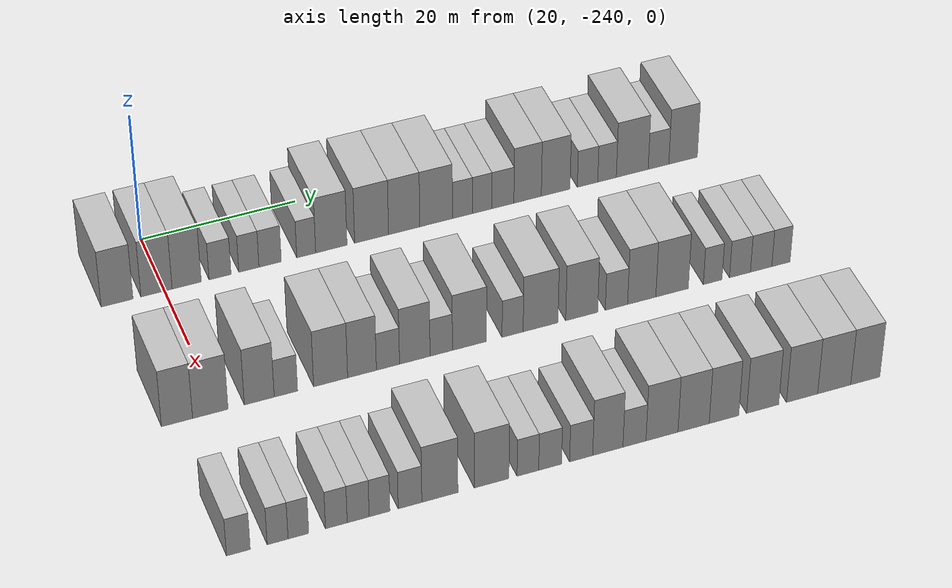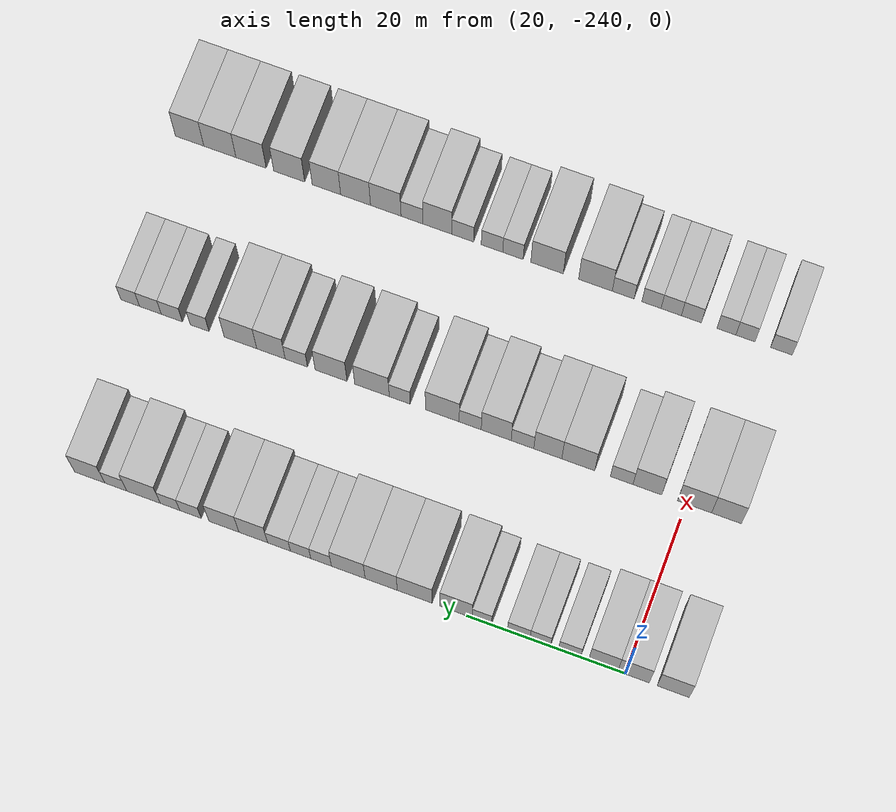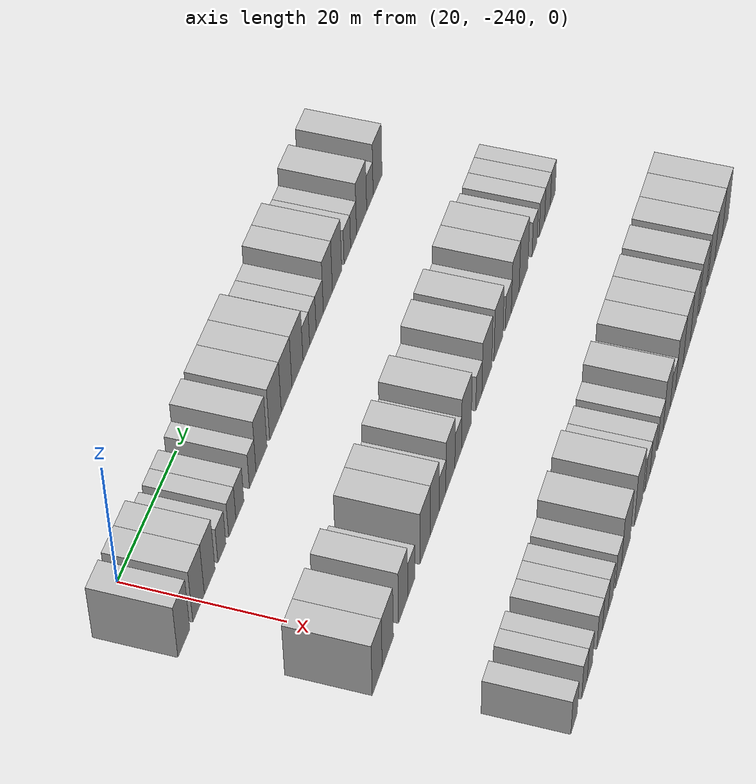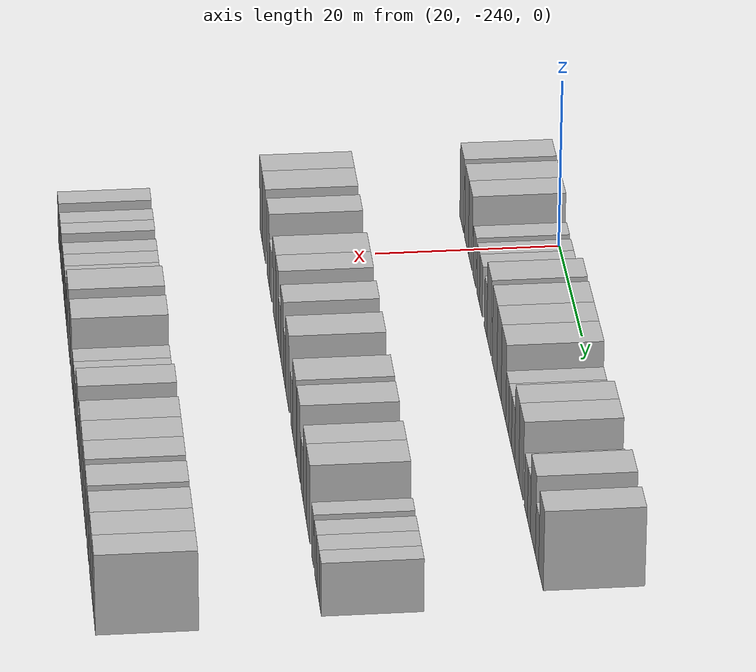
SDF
<sdf version="1.6">
 <world name="default">
  <model name="building_1">
   <static>1</static>
   <pose>25.0000 -245.9933 0 0.000000 0.000000 0.000000</pose>
   <link name="link">
    <pose>0 0 4.50 0 0 0</pose>
    <collision name="collision"><geometry><box><size>10.0000 4.0133 9.0000</size></box></geometry></collision>
    <visual name="visual">
     <cast_shadows>0</cast_shadows>
     <geometry><box><size>10.0000 4.0133 9.0000</size></box></geometry>
     <material>
      <script>
       <uri>model://HANNAS_wall/materials/scripts</uri>
       <uri>model://HANNAS_wall/materials/textures</uri>
       <name>vrc/HANNAS_wall</name>
      </script>
     </material>
    </visual>
   </link>
  </model>
  <model name="building_2">
   <static>1</static>
   <pose>25.0000 -241.0090 0 0.000000 0.000000 0.000000</pose>
   <link name="link">
    <pose>0 0 4.50 0 0 0</pose>
    <collision name="collision"><geometry><box><size>10.0000 3.9553 9.0000</size></box></geometry></collision>
    <visual name="visual">
     <cast_shadows>0</cast_shadows>
     <geometry><box><size>10.0000 3.9553 9.0000</size></box></geometry>
     <material>
      <script>
       <uri>model://HANNAS_wall/materials/scripts</uri>
       <uri>model://HANNAS_wall/materials/textures</uri>
       <name>vrc/HANNAS_wall</name>
      </script>
     </material>
    </visual>
   </link>
  </model>
  <model name="building_3">
   <static>1</static>
   <pose>25.0000 -237.1821 0 0.000000 0.000000 0.000000</pose>
   <link name="link">
    <pose>0 0 4.50 0 0 0</pose>
    <collision name="collision"><geometry><box><size>10.0000 3.6985 9.0000</size></box></geometry></collision>
    <visual name="visual">
     <cast_shadows>0</cast_shadows>
     <geometry><box><size>10.0000 3.6985 9.0000</size></box></geometry>
     <material>
      <script>
       <uri>model://HANNAS_wall/materials/scripts</uri>
       <uri>model://HANNAS_wall/materials/textures</uri>
       <name>vrc/HANNAS_wall</name>
      </script>
     </material>
    </visual>
   </link>
  </model>
  <model name="building_4">
   <static>1</static>
   <pose>25.0000 -232.9304 0 0.000000 0.000000 0.000000</pose>
   <link name="link">
    <pose>0 0 3.00 0 0 0</pose>
    <collision name="collision"><geometry><box><size>10.0000 2.8050 6.0000</size></box></geometry></collision>
    <visual name="visual">
     <cast_shadows>0</cast_shadows>
     <geometry><box><size>10.0000 2.8050 6.0000</size></box></geometry>
     <material>
      <script>
       <uri>model://HANNAS_wall/materials/scripts</uri>
       <uri>model://HANNAS_wall/materials/textures</uri>
       <name>vrc/HANNAS_wall</name>
      </script>
     </material>
    </visual>
   </link>
  </model>
  <model name="building_5">
   <static>1</static>
   <pose>25.0000 -229.2322 0 0.000000 0.000000 0.000000</pose>
   <link name="link">
    <pose>0 0 3.00 0 0 0</pose>
    <collision name="collision"><geometry><box><size>10.0000 2.5915 6.0000</size></box></geometry></collision>
    <visual name="visual">
     <cast_shadows>0</cast_shadows>
     <geometry><box><size>10.0000 2.5915 6.0000</size></box></geometry>
     <material>
      <script>
       <uri>model://HANNAS_wall/materials/scripts</uri>
       <uri>model://HANNAS_wall/materials/textures</uri>
       <name>vrc/HANNAS_wall</name>
      </script>
     </material>
    </visual>
   </link>
  </model>
  <model name="building_6">
   <static>1</static>
   <pose>25.0000 -226.4989 0 0.000000 0.000000 0.000000</pose>
   <link name="link">
    <pose>0 0 3.00 0 0 0</pose>
    <collision name="collision"><geometry><box><size>10.0000 2.8751 6.0000</size></box></geometry></collision>
    <visual name="visual">
     <cast_shadows>0</cast_shadows>
     <geometry><box><size>10.0000 2.8751 6.0000</size></box></geometry>
     <material>
      <script>
       <uri>model://HANNAS_wall/materials/scripts</uri>
       <uri>model://HANNAS_wall/materials/textures</uri>
       <name>vrc/HANNAS_wall</name>
      </script>
     </material>
    </visual>
   </link>
  </model>
  <model name="building_7">
   <static>1</static>
   <pose>25.0000 -221.8341 0 0.000000 0.000000 0.000000</pose>
   <link name="link">
    <pose>0 0 3.00 0 0 0</pose>
    <collision name="collision"><geometry><box><size>10.0000 2.4544 6.0000</size></box></geometry></collision>
    <visual name="visual">
     <cast_shadows>0</cast_shadows>
     <geometry><box><size>10.0000 2.4544 6.0000</size></box></geometry>
     <material>
      <script>
       <uri>model://HANNAS_wall/materials/scripts</uri>
       <uri>model://HANNAS_wall/materials/textures</uri>
       <name>vrc/HANNAS_wall</name>
      </script>
     </material>
    </visual>
   </link>
  </model>
  <model name="building_8">
   <static>1</static>
   <pose>25.0000 -218.5676 0 0.000000 0.000000 0.000000</pose>
   <link name="link">
    <pose>0 0 4.50 0 0 0</pose>
    <collision name="collision"><geometry><box><size>10.0000 4.0787 9.0000</size></box></geometry></collision>
    <visual name="visual">
     <cast_shadows>0</cast_shadows>
     <geometry><box><size>10.0000 4.0787 9.0000</size></box></geometry>
     <material>
      <script>
       <uri>model://HANNAS_wall/materials/scripts</uri>
       <uri>model://HANNAS_wall/materials/textures</uri>
       <name>vrc/HANNAS_wall</name>
      </script>
     </material>
    </visual>
   </link>
  </model>
  <model name="building_9">
   <static>1</static>
   <pose>25.0000 -213.3047 0 0.000000 0.000000 0.000000</pose>
   <link name="link">
    <pose>0 0 4.50 0 0 0</pose>
    <collision name="collision"><geometry><box><size>10.0000 4.4470 9.0000</size></box></geometry></collision>
    <visual name="visual">
     <cast_shadows>0</cast_shadows>
     <geometry><box><size>10.0000 4.4470 9.0000</size></box></geometry>
     <material>
      <script>
       <uri>model://HANNAS_wall/materials/scripts</uri>
       <uri>model://HANNAS_wall/materials/textures</uri>
       <name>vrc/HANNAS_wall</name>
      </script>
     </material>
    </visual>
   </link>
  </model>
  <model name="building_10">
   <static>1</static>
   <pose>25.0000 -209.0256 0 0.000000 0.000000 0.000000</pose>
   <link name="link">
    <pose>0 0 4.50 0 0 0</pose>
    <collision name="collision"><geometry><box><size>10.0000 4.1112 9.0000</size></box></geometry></collision>
    <visual name="visual">
     <cast_shadows>0</cast_shadows>
     <geometry><box><size>10.0000 4.1112 9.0000</size></box></geometry>
     <material>
      <script>
       <uri>model://HANNAS_wall/materials/scripts</uri>
       <uri>model://HANNAS_wall/materials/textures</uri>
       <name>vrc/HANNAS_wall</name>
      </script>
     </material>
    </visual>
   </link>
  </model>
  <model name="building_11">
   <static>1</static>
   <pose>25.0000 -204.8064 0 0.000000 0.000000 0.000000</pose>
   <link name="link">
    <pose>0 0 4.50 0 0 0</pose>
    <collision name="collision"><geometry><box><size>10.0000 4.3273 9.0000</size></box></geometry></collision>
    <visual name="visual">
     <cast_shadows>0</cast_shadows>
     <geometry><box><size>10.0000 4.3273 9.0000</size></box></geometry>
     <material>
      <script>
       <uri>model://HANNAS_wall/materials/scripts</uri>
       <uri>model://HANNAS_wall/materials/textures</uri>
       <name>vrc/HANNAS_wall</name>
      </script>
     </material>
    </visual>
   </link>
  </model>
  <model name="building_12">
   <static>1</static>
   <pose>25.0000 -201.3231 0 0.000000 0.000000 0.000000</pose>
   <link name="link">
    <pose>0 0 3.00 0 0 0</pose>
    <collision name="collision"><geometry><box><size>10.0000 2.6392 6.0000</size></box></geometry></collision>
    <visual name="visual">
     <cast_shadows>0</cast_shadows>
     <geometry><box><size>10.0000 2.6392 6.0000</size></box></geometry>
     <material>
      <script>
       <uri>model://HANNAS_wall/materials/scripts</uri>
       <uri>model://HANNAS_wall/materials/textures</uri>
       <name>vrc/HANNAS_wall</name>
      </script>
     </material>
    </visual>
   </link>
  </model>
  <model name="building_13">
   <static>1</static>
   <pose>25.0000 -198.6976 0 0.000000 0.000000 0.000000</pose>
   <link name="link">
    <pose>0 0 3.00 0 0 0</pose>
    <collision name="collision"><geometry><box><size>10.0000 2.6119 6.0000</size></box></geometry></collision>
    <visual name="visual">
     <cast_shadows>0</cast_shadows>
     <geometry><box><size>10.0000 2.6119 6.0000</size></box></geometry>
     <material>
      <script>
       <uri>model://HANNAS_wall/materials/scripts</uri>
       <uri>model://HANNAS_wall/materials/textures</uri>
       <name>vrc/HANNAS_wall</name>
      </script>
     </material>
    </visual>
   </link>
  </model>
  <model name="building_14">
   <static>1</static>
   <pose>25.0000 -195.9175 0 0.000000 0.000000 0.000000</pose>
   <link name="link">
    <pose>0 0 3.00 0 0 0</pose>
    <collision name="collision"><geometry><box><size>10.0000 2.9483 6.0000</size></box></geometry></collision>
    <visual name="visual">
     <cast_shadows>0</cast_shadows>
     <geometry><box><size>10.0000 2.9483 6.0000</size></box></geometry>
     <material>
      <script>
       <uri>model://HANNAS_wall/materials/scripts</uri>
       <uri>model://HANNAS_wall/materials/textures</uri>
       <name>vrc/HANNAS_wall</name>
      </script>
     </material>
    </visual>
   </link>
  </model>
  <model name="building_15">
   <static>1</static>
   <pose>25.0000 -192.6000 0 0.000000 0.000000 0.000000</pose>
   <link name="link">
    <pose>0 0 4.50 0 0 0</pose>
    <collision name="collision"><geometry><box><size>10.0000 3.6866 9.0000</size></box></geometry></collision>
    <visual name="visual">
     <cast_shadows>0</cast_shadows>
     <geometry><box><size>10.0000 3.6866 9.0000</size></box></geometry>
     <material>
      <script>
       <uri>model://HANNAS_wall/materials/scripts</uri>
       <uri>model://HANNAS_wall/materials/textures</uri>
       <name>vrc/HANNAS_wall</name>
      </script>
     </material>
    </visual>
   </link>
  </model>
  <model name="building_16">
   <static>1</static>
   <pose>25.0000 -188.8242 0 0.000000 0.000000 0.000000</pose>
   <link name="link">
    <pose>0 0 4.50 0 0 0</pose>
    <collision name="collision"><geometry><box><size>10.0000 3.8650 9.0000</size></box></geometry></collision>
    <visual name="visual">
     <cast_shadows>0</cast_shadows>
     <geometry><box><size>10.0000 3.8650 9.0000</size></box></geometry>
     <material>
      <script>
       <uri>model://HANNAS_wall/materials/scripts</uri>
       <uri>model://HANNAS_wall/materials/textures</uri>
       <name>vrc/HANNAS_wall</name>
      </script>
     </material>
    </visual>
   </link>
  </model>
  <model name="building_17">
   <static>1</static>
   <pose>25.0000 -184.5043 0 0.000000 0.000000 0.000000</pose>
   <link name="link">
    <pose>0 0 3.00 0 0 0</pose>
    <collision name="collision"><geometry><box><size>10.0000 2.7749 6.0000</size></box></geometry></collision>
    <visual name="visual">
     <cast_shadows>0</cast_shadows>
     <geometry><box><size>10.0000 2.7749 6.0000</size></box></geometry>
     <material>
      <script>
       <uri>model://HANNAS_wall/materials/scripts</uri>
       <uri>model://HANNAS_wall/materials/textures</uri>
       <name>vrc/HANNAS_wall</name>
      </script>
     </material>
    </visual>
   </link>
  </model>
  <model name="building_18">
   <static>1</static>
   <pose>25.0000 -181.8539 0 0.000000 0.000000 0.000000</pose>
   <link name="link">
    <pose>0 0 3.00 0 0 0</pose>
    <collision name="collision"><geometry><box><size>10.0000 2.5259 6.0000</size></box></geometry></collision>
    <visual name="visual">
     <cast_shadows>0</cast_shadows>
     <geometry><box><size>10.0000 2.5259 6.0000</size></box></geometry>
     <material>
      <script>
       <uri>model://HANNAS_wall/materials/scripts</uri>
       <uri>model://HANNAS_wall/materials/textures</uri>
       <name>vrc/HANNAS_wall</name>
      </script>
     </material>
    </visual>
   </link>
  </model>
  <model name="building_19">
   <static>1</static>
   <pose>25.0000 -178.4099 0 0.000000 0.000000 0.000000</pose>
   <link name="link">
    <pose>0 0 4.50 0 0 0</pose>
    <collision name="collision"><geometry><box><size>10.0000 4.3621 9.0000</size></box></geometry></collision>
    <visual name="visual">
     <cast_shadows>0</cast_shadows>
     <geometry><box><size>10.0000 4.3621 9.0000</size></box></geometry>
     <material>
      <script>
       <uri>model://HANNAS_wall/materials/scripts</uri>
       <uri>model://HANNAS_wall/materials/textures</uri>
       <name>vrc/HANNAS_wall</name>
      </script>
     </material>
    </visual>
   </link>
  </model>
  <model name="building_20">
   <static>1</static>
   <pose>25.0000 -174.8103 0 0.000000 0.000000 0.000000</pose>
   <link name="link">
    <pose>0 0 3.00 0 0 0</pose>
    <collision name="collision"><geometry><box><size>10.0000 2.8371 6.0000</size></box></geometry></collision>
    <visual name="visual">
     <cast_shadows>0</cast_shadows>
     <geometry><box><size>10.0000 2.8371 6.0000</size></box></geometry>
     <material>
      <script>
       <uri>model://HANNAS_wall/materials/scripts</uri>
       <uri>model://HANNAS_wall/materials/textures</uri>
       <name>vrc/HANNAS_wall</name>
      </script>
     </material>
    </visual>
   </link>
  </model>
  <model name="building_21">
   <static>1</static>
   <pose>25.0000 -171.4279 0 0.000000 0.000000 0.000000</pose>
   <link name="link">
    <pose>0 0 4.50 0 0 0</pose>
    <collision name="collision"><geometry><box><size>10.0000 3.9276 9.0000</size></box></geometry></collision>
    <visual name="visual">
     <cast_shadows>0</cast_shadows>
     <geometry><box><size>10.0000 3.9276 9.0000</size></box></geometry>
     <material>
      <script>
       <uri>model://HANNAS_wall/materials/scripts</uri>
       <uri>model://HANNAS_wall/materials/textures</uri>
       <name>vrc/HANNAS_wall</name>
      </script>
     </material>
    </visual>
   </link>
  </model>
  <model name="building_135">
   <static>1</static>
   <pose>47.0000 -245.0998 0 0.000000 0.000000 0.000000</pose>
   <link name="link">
    <pose>0 0 4.50 0 0 0</pose>
    <collision name="collision"><geometry><box><size>10.0000 3.8003 9.0000</size></box></geometry></collision>
    <visual name="visual">
     <cast_shadows>0</cast_shadows>
     <geometry><box><size>10.0000 3.8003 9.0000</size></box></geometry>
     <material>
      <script>
       <uri>model://HANNAS_wall/materials/scripts</uri>
       <uri>model://HANNAS_wall/materials/textures</uri>
       <name>vrc/HANNAS_wall</name>
      </script>
     </material>
    </visual>
   </link>
  </model>
  <model name="building_136">
   <static>1</static>
   <pose>47.0000 -241.0309 0 0.000000 0.000000 0.000000</pose>
   <link name="link">
    <pose>0 0 4.50 0 0 0</pose>
    <collision name="collision"><geometry><box><size>10.0000 4.3375 9.0000</size></box></geometry></collision>
    <visual name="visual">
     <cast_shadows>0</cast_shadows>
     <geometry><box><size>10.0000 4.3375 9.0000</size></box></geometry>
     <material>
      <script>
       <uri>model://HANNAS_wall/materials/scripts</uri>
       <uri>model://HANNAS_wall/materials/textures</uri>
       <name>vrc/HANNAS_wall</name>
      </script>
     </material>
    </visual>
   </link>
  </model>
  <model name="building_137">
   <static>1</static>
   <pose>47.0000 -235.0188 0 0.000000 0.000000 0.000000</pose>
   <link name="link">
    <pose>0 0 4.50 0 0 0</pose>
    <collision name="collision"><geometry><box><size>10.0000 3.6867 9.0000</size></box></geometry></collision>
    <visual name="visual">
     <cast_shadows>0</cast_shadows>
     <geometry><box><size>10.0000 3.6867 9.0000</size></box></geometry>
     <material>
      <script>
       <uri>model://HANNAS_wall/materials/scripts</uri>
       <uri>model://HANNAS_wall/materials/textures</uri>
       <name>vrc/HANNAS_wall</name>
      </script>
     </material>
    </visual>
   </link>
  </model>
  <model name="building_138">
   <static>1</static>
   <pose>47.0000 -231.7268 0 0.000000 0.000000 0.000000</pose>
   <link name="link">
    <pose>0 0 3.00 0 0 0</pose>
    <collision name="collision"><geometry><box><size>10.0000 2.8975 6.0000</size></box></geometry></collision>
    <visual name="visual">
     <cast_shadows>0</cast_shadows>
     <geometry><box><size>10.0000 2.8975 6.0000</size></box></geometry>
     <material>
      <script>
       <uri>model://HANNAS_wall/materials/scripts</uri>
       <uri>model://HANNAS_wall/materials/textures</uri>
       <name>vrc/HANNAS_wall</name>
      </script>
     </material>
    </visual>
   </link>
  </model>
  <model name="building_139">
   <static>1</static>
   <pose>47.0000 -226.1566 0 0.000000 0.000000 0.000000</pose>
   <link name="link">
    <pose>0 0 4.50 0 0 0</pose>
    <collision name="collision"><geometry><box><size>10.0000 4.2428 9.0000</size></box></geometry></collision>
    <visual name="visual">
     <cast_shadows>0</cast_shadows>
     <geometry><box><size>10.0000 4.2428 9.0000</size></box></geometry>
     <material>
      <script>
       <uri>model://HANNAS_wall/materials/scripts</uri>
       <uri>model://HANNAS_wall/materials/textures</uri>
       <name>vrc/HANNAS_wall</name>
      </script>
     </material>
    </visual>
   </link>
  </model>
  <model name="building_140">
   <static>1</static>
   <pose>47.0000 -222.2340 0 0.000000 0.000000 0.000000</pose>
   <link name="link">
    <pose>0 0 4.50 0 0 0</pose>
    <collision name="collision"><geometry><box><size>10.0000 3.6024 9.0000</size></box></geometry></collision>
    <visual name="visual">
     <cast_shadows>0</cast_shadows>
     <geometry><box><size>10.0000 3.6024 9.0000</size></box></geometry>
     <material>
      <script>
       <uri>model://HANNAS_wall/materials/scripts</uri>
       <uri>model://HANNAS_wall/materials/textures</uri>
       <name>vrc/HANNAS_wall</name>
      </script>
     </material>
    </visual>
   </link>
  </model>
  <model name="building_141">
   <static>1</static>
   <pose>47.0000 -218.9761 0 0.000000 0.000000 0.000000</pose>
   <link name="link">
    <pose>0 0 3.00 0 0 0</pose>
    <collision name="collision"><geometry><box><size>10.0000 2.9133 6.0000</size></box></geometry></collision>
    <visual name="visual">
     <cast_shadows>0</cast_shadows>
     <geometry><box><size>10.0000 2.9133 6.0000</size></box></geometry>
     <material>
      <script>
       <uri>model://HANNAS_wall/materials/scripts</uri>
       <uri>model://HANNAS_wall/materials/textures</uri>
       <name>vrc/HANNAS_wall</name>
      </script>
     </material>
    </visual>
   </link>
  </model>
  <model name="building_142">
   <static>1</static>
   <pose>47.0000 -215.5890 0 0.000000 0.000000 0.000000</pose>
   <link name="link">
    <pose>0 0 4.50 0 0 0</pose>
    <collision name="collision"><geometry><box><size>10.0000 3.8611 9.0000</size></box></geometry></collision>
    <visual name="visual">
     <cast_shadows>0</cast_shadows>
     <geometry><box><size>10.0000 3.8611 9.0000</size></box></geometry>
     <material>
      <script>
       <uri>model://HANNAS_wall/materials/scripts</uri>
       <uri>model://HANNAS_wall/materials/textures</uri>
       <name>vrc/HANNAS_wall</name>
      </script>
     </material>
    </visual>
   </link>
  </model>
  <model name="building_143">
   <static>1</static>
   <pose>47.0000 -212.2351 0 0.000000 0.000000 0.000000</pose>
   <link name="link">
    <pose>0 0 3.00 0 0 0</pose>
    <collision name="collision"><geometry><box><size>10.0000 2.8466 6.0000</size></box></geometry></collision>
    <visual name="visual">
     <cast_shadows>0</cast_shadows>
     <geometry><box><size>10.0000 2.8466 6.0000</size></box></geometry>
     <material>
      <script>
       <uri>model://HANNAS_wall/materials/scripts</uri>
       <uri>model://HANNAS_wall/materials/textures</uri>
       <name>vrc/HANNAS_wall</name>
      </script>
     </material>
    </visual>
   </link>
  </model>
  <model name="building_144">
   <static>1</static>
   <pose>47.0000 -208.6391 0 0.000000 0.000000 0.000000</pose>
   <link name="link">
    <pose>0 0 4.50 0 0 0</pose>
    <collision name="collision"><geometry><box><size>10.0000 4.3456 9.0000</size></box></geometry></collision>
    <visual name="visual">
     <cast_shadows>0</cast_shadows>
     <geometry><box><size>10.0000 4.3456 9.0000</size></box></geometry>
     <material>
      <script>
       <uri>model://HANNAS_wall/materials/scripts</uri>
       <uri>model://HANNAS_wall/materials/textures</uri>
       <name>vrc/HANNAS_wall</name>
      </script>
     </material>
    </visual>
   </link>
  </model>
  <model name="building_145">
   <static>1</static>
   <pose>47.0000 -203.1096 0 0.000000 0.000000 0.000000</pose>
   <link name="link">
    <pose>0 0 3.00 0 0 0</pose>
    <collision name="collision"><geometry><box><size>10.0000 2.7134 6.0000</size></box></geometry></collision>
    <visual name="visual">
     <cast_shadows>0</cast_shadows>
     <geometry><box><size>10.0000 2.7134 6.0000</size></box></geometry>
     <material>
      <script>
       <uri>model://HANNAS_wall/materials/scripts</uri>
       <uri>model://HANNAS_wall/materials/textures</uri>
       <name>vrc/HANNAS_wall</name>
      </script>
     </material>
    </visual>
   </link>
  </model>
  <model name="building_146">
   <static>1</static>
   <pose>47.0000 -199.5053 0 0.000000 0.000000 0.000000</pose>
   <link name="link">
    <pose>0 0 4.50 0 0 0</pose>
    <collision name="collision"><geometry><box><size>10.0000 4.4951 9.0000</size></box></geometry></collision>
    <visual name="visual">
     <cast_shadows>0</cast_shadows>
     <geometry><box><size>10.0000 4.4951 9.0000</size></box></geometry>
     <material>
      <script>
       <uri>model://HANNAS_wall/materials/scripts</uri>
       <uri>model://HANNAS_wall/materials/textures</uri>
       <name>vrc/HANNAS_wall</name>
      </script>
     </material>
    </visual>
   </link>
  </model>
  <model name="building_147">
   <static>1</static>
   <pose>47.0000 -194.1768 0 0.000000 0.000000 0.000000</pose>
   <link name="link">
    <pose>0 0 4.50 0 0 0</pose>
    <collision name="collision"><geometry><box><size>10.0000 4.1620 9.0000</size></box></geometry></collision>
    <visual name="visual">
     <cast_shadows>0</cast_shadows>
     <geometry><box><size>10.0000 4.1620 9.0000</size></box></geometry>
     <material>
      <script>
       <uri>model://HANNAS_wall/materials/scripts</uri>
       <uri>model://HANNAS_wall/materials/textures</uri>
       <name>vrc/HANNAS_wall</name>
      </script>
     </material>
    </visual>
   </link>
  </model>
  <model name="building_148">
   <static>1</static>
   <pose>47.0000 -189.6405 0 0.000000 0.000000 0.000000</pose>
   <link name="link">
    <pose>0 0 3.00 0 0 0</pose>
    <collision name="collision"><geometry><box><size>10.0000 2.9105 6.0000</size></box></geometry></collision>
    <visual name="visual">
     <cast_shadows>0</cast_shadows>
     <geometry><box><size>10.0000 2.9105 6.0000</size></box></geometry>
     <material>
      <script>
       <uri>model://HANNAS_wall/materials/scripts</uri>
       <uri>model://HANNAS_wall/materials/textures</uri>
       <name>vrc/HANNAS_wall</name>
      </script>
     </material>
    </visual>
   </link>
  </model>
  <model name="building_149">
   <static>1</static>
   <pose>47.0000 -186.3275 0 0.000000 0.000000 0.000000</pose>
   <link name="link">
    <pose>0 0 4.50 0 0 0</pose>
    <collision name="collision"><geometry><box><size>10.0000 3.7156 9.0000</size></box></geometry></collision>
    <visual name="visual">
     <cast_shadows>0</cast_shadows>
     <geometry><box><size>10.0000 3.7156 9.0000</size></box></geometry>
     <material>
      <script>
       <uri>model://HANNAS_wall/materials/scripts</uri>
       <uri>model://HANNAS_wall/materials/textures</uri>
       <name>vrc/HANNAS_wall</name>
      </script>
     </material>
    </visual>
   </link>
  </model>
  <model name="building_150">
   <static>1</static>
   <pose>47.0000 -182.3292 0 0.000000 0.000000 0.000000</pose>
   <link name="link">
    <pose>0 0 4.50 0 0 0</pose>
    <collision name="collision"><geometry><box><size>10.0000 4.2810 9.0000</size></box></geometry></collision>
    <visual name="visual">
     <cast_shadows>0</cast_shadows>
     <geometry><box><size>10.0000 4.2810 9.0000</size></box></geometry>
     <material>
      <script>
       <uri>model://HANNAS_wall/materials/scripts</uri>
       <uri>model://HANNAS_wall/materials/textures</uri>
       <name>vrc/HANNAS_wall</name>
      </script>
     </material>
    </visual>
   </link>
  </model>
  <model name="building_151">
   <static>1</static>
   <pose>47.0000 -176.9479 0 0.000000 0.000000 0.000000</pose>
   <link name="link">
    <pose>0 0 3.00 0 0 0</pose>
    <collision name="collision"><geometry><box><size>10.0000 2.4816 6.0000</size></box></geometry></collision>
    <visual name="visual">
     <cast_shadows>0</cast_shadows>
     <geometry><box><size>10.0000 2.4816 6.0000</size></box></geometry>
     <material>
      <script>
       <uri>model://HANNAS_wall/materials/scripts</uri>
       <uri>model://HANNAS_wall/materials/textures</uri>
       <name>vrc/HANNAS_wall</name>
      </script>
     </material>
    </visual>
   </link>
  </model>
  <model name="building_152">
   <static>1</static>
   <pose>47.0000 -173.3113 0 0.000000 0.000000 0.000000</pose>
   <link name="link">
    <pose>0 0 3.00 0 0 0</pose>
    <collision name="collision"><geometry><box><size>10.0000 2.7916 6.0000</size></box></geometry></collision>
    <visual name="visual">
     <cast_shadows>0</cast_shadows>
     <geometry><box><size>10.0000 2.7916 6.0000</size></box></geometry>
     <material>
      <script>
       <uri>model://HANNAS_wall/materials/scripts</uri>
       <uri>model://HANNAS_wall/materials/textures</uri>
       <name>vrc/HANNAS_wall</name>
      </script>
     </material>
    </visual>
   </link>
  </model>
  <model name="building_153">
   <static>1</static>
   <pose>47.0000 -170.4796 0 0.000000 0.000000 0.000000</pose>
   <link name="link">
    <pose>0 0 3.00 0 0 0</pose>
    <collision name="collision"><geometry><box><size>10.0000 2.8718 6.0000</size></box></geometry></collision>
    <visual name="visual">
     <cast_shadows>0</cast_shadows>
     <geometry><box><size>10.0000 2.8718 6.0000</size></box></geometry>
     <material>
      <script>
       <uri>model://HANNAS_wall/materials/scripts</uri>
       <uri>model://HANNAS_wall/materials/textures</uri>
       <name>vrc/HANNAS_wall</name>
      </script>
     </material>
    </visual>
   </link>
  </model>
  <model name="building_154">
   <static>1</static>
   <pose>47.0000 -167.8185 0 0.000000 0.000000 0.000000</pose>
   <link name="link">
    <pose>0 0 3.00 0 0 0</pose>
    <collision name="collision"><geometry><box><size>10.0000 2.4504 6.0000</size></box></geometry></collision>
    <visual name="visual">
     <cast_shadows>0</cast_shadows>
     <geometry><box><size>10.0000 2.4504 6.0000</size></box></geometry>
     <material>
      <script>
       <uri>model://HANNAS_wall/materials/scripts</uri>
       <uri>model://HANNAS_wall/materials/textures</uri>
       <name>vrc/HANNAS_wall</name>
      </script>
     </material>
    </visual>
   </link>
  </model>
  <model name="building_260">
   <static>1</static>
   <pose>69.0000 -244.6020 0 0.000000 0.000000 0.000000</pose>
   <link name="link">
    <pose>0 0 3.00 0 0 0</pose>
    <collision name="collision"><geometry><box><size>10.0000 2.7961 6.0000</size></box></geometry></collision>
    <visual name="visual">
     <cast_shadows>0</cast_shadows>
     <geometry><box><size>10.0000 2.7961 6.0000</size></box></geometry>
     <material>
      <script>
       <uri>model://HANNAS_wall/materials/scripts</uri>
       <uri>model://HANNAS_wall/materials/textures</uri>
       <name>vrc/HANNAS_wall</name>
      </script>
     </material>
    </visual>
   </link>
  </model>
  <model name="building_261">
   <static>1</static>
   <pose>69.0000 -239.9670 0 0.000000 0.000000 0.000000</pose>
   <link name="link">
    <pose>0 0 3.00 0 0 0</pose>
    <collision name="collision"><geometry><box><size>10.0000 2.4738 6.0000</size></box></geometry></collision>
    <visual name="visual">
     <cast_shadows>0</cast_shadows>
     <geometry><box><size>10.0000 2.4738 6.0000</size></box></geometry>
     <material>
      <script>
       <uri>model://HANNAS_wall/materials/scripts</uri>
       <uri>model://HANNAS_wall/materials/textures</uri>
       <name>vrc/HANNAS_wall</name>
      </script>
     </material>
    </visual>
   </link>
  </model>
  <model name="building_262">
   <static>1</static>
   <pose>69.0000 -237.5021 0 0.000000 0.000000 0.000000</pose>
   <link name="link">
    <pose>0 0 3.00 0 0 0</pose>
    <collision name="collision"><geometry><box><size>10.0000 2.4560 6.0000</size></box></geometry></collision>
    <visual name="visual">
     <cast_shadows>0</cast_shadows>
     <geometry><box><size>10.0000 2.4560 6.0000</size></box></geometry>
     <material>
      <script>
       <uri>model://HANNAS_wall/materials/scripts</uri>
       <uri>model://HANNAS_wall/materials/textures</uri>
       <name>vrc/HANNAS_wall</name>
      </script>
     </material>
    </visual>
   </link>
  </model>
  <model name="building_263">
   <static>1</static>
   <pose>69.0000 -232.9785 0 0.000000 0.000000 0.000000</pose>
   <link name="link">
    <pose>0 0 3.00 0 0 0</pose>
    <collision name="collision"><geometry><box><size>10.0000 2.5913 6.0000</size></box></geometry></collision>
    <visual name="visual">
     <cast_shadows>0</cast_shadows>
     <geometry><box><size>10.0000 2.5913 6.0000</size></box></geometry>
     <material>
      <script>
       <uri>model://HANNAS_wall/materials/scripts</uri>
       <uri>model://HANNAS_wall/materials/textures</uri>
       <name>vrc/HANNAS_wall</name>
      </script>
     </material>
    </visual>
   </link>
  </model>
  <model name="building_264">
   <static>1</static>
   <pose>69.0000 -230.3650 0 0.000000 0.000000 0.000000</pose>
   <link name="link">
    <pose>0 0 3.00 0 0 0</pose>
    <collision name="collision"><geometry><box><size>10.0000 2.6356 6.0000</size></box></geometry></collision>
    <visual name="visual">
     <cast_shadows>0</cast_shadows>
     <geometry><box><size>10.0000 2.6356 6.0000</size></box></geometry>
     <material>
      <script>
       <uri>model://HANNAS_wall/materials/scripts</uri>
       <uri>model://HANNAS_wall/materials/textures</uri>
       <name>vrc/HANNAS_wall</name>
      </script>
     </material>
    </visual>
   </link>
  </model>
  <model name="building_265">
   <static>1</static>
   <pose>69.0000 -227.7972 0 0.000000 0.000000 0.000000</pose>
   <link name="link">
    <pose>0 0 3.00 0 0 0</pose>
    <collision name="collision"><geometry><box><size>10.0000 2.5000 6.0000</size></box></geometry></collision>
    <visual name="visual">
     <cast_shadows>0</cast_shadows>
     <geometry><box><size>10.0000 2.5000 6.0000</size></box></geometry>
     <material>
      <script>
       <uri>model://HANNAS_wall/materials/scripts</uri>
       <uri>model://HANNAS_wall/materials/textures</uri>
       <name>vrc/HANNAS_wall</name>
      </script>
     </material>
    </visual>
   </link>
  </model>
  <model name="building_266">
   <static>1</static>
   <pose>69.0000 -224.1180 0 0.000000 0.000000 0.000000</pose>
   <link name="link">
    <pose>0 0 3.00 0 0 0</pose>
    <collision name="collision"><geometry><box><size>10.0000 2.8585 6.0000</size></box></geometry></collision>
    <visual name="visual">
     <cast_shadows>0</cast_shadows>
     <geometry><box><size>10.0000 2.8585 6.0000</size></box></geometry>
     <material>
      <script>
       <uri>model://HANNAS_wall/materials/scripts</uri>
       <uri>model://HANNAS_wall/materials/textures</uri>
       <name>vrc/HANNAS_wall</name>
      </script>
     </material>
    </visual>
   </link>
  </model>
  <model name="building_267">
   <static>1</static>
   <pose>69.0000 -220.4954 0 0.000000 0.000000 0.000000</pose>
   <link name="link">
    <pose>0 0 4.50 0 0 0</pose>
    <collision name="collision"><geometry><box><size>10.0000 4.3865 9.0000</size></box></geometry></collision>
    <visual name="visual">
     <cast_shadows>0</cast_shadows>
     <geometry><box><size>10.0000 4.3865 9.0000</size></box></geometry>
     <material>
      <script>
       <uri>model://HANNAS_wall/materials/scripts</uri>
       <uri>model://HANNAS_wall/materials/textures</uri>
       <name>vrc/HANNAS_wall</name>
      </script>
     </material>
    </visual>
   </link>
  </model>
  <model name="building_268">
   <static>1</static>
   <pose>69.0000 -214.1790 0 0.000000 0.000000 0.000000</pose>
   <link name="link">
    <pose>0 0 4.50 0 0 0</pose>
    <collision name="collision"><geometry><box><size>10.0000 4.2463 9.0000</size></box></geometry></collision>
    <visual name="visual">
     <cast_shadows>0</cast_shadows>
     <geometry><box><size>10.0000 4.2463 9.0000</size></box></geometry>
     <material>
      <script>
       <uri>model://HANNAS_wall/materials/scripts</uri>
       <uri>model://HANNAS_wall/materials/textures</uri>
       <name>vrc/HANNAS_wall</name>
      </script>
     </material>
    </visual>
   </link>
  </model>
  <model name="building_269">
   <static>1</static>
   <pose>69.0000 -209.7197 0 0.000000 0.000000 0.000000</pose>
   <link name="link">
    <pose>0 0 3.00 0 0 0</pose>
    <collision name="collision"><geometry><box><size>10.0000 2.6721 6.0000</size></box></geometry></collision>
    <visual name="visual">
     <cast_shadows>0</cast_shadows>
     <geometry><box><size>10.0000 2.6721 6.0000</size></box></geometry>
     <material>
      <script>
       <uri>model://HANNAS_wall/materials/scripts</uri>
       <uri>model://HANNAS_wall/materials/textures</uri>
       <name>vrc/HANNAS_wall</name>
      </script>
     </material>
    </visual>
   </link>
  </model>
  <model name="building_270">
   <static>1</static>
   <pose>69.0000 -206.9708 0 0.000000 0.000000 0.000000</pose>
   <link name="link">
    <pose>0 0 3.00 0 0 0</pose>
    <collision name="collision"><geometry><box><size>10.0000 2.8258 6.0000</size></box></geometry></collision>
    <visual name="visual">
     <cast_shadows>0</cast_shadows>
     <geometry><box><size>10.0000 2.8258 6.0000</size></box></geometry>
     <material>
      <script>
       <uri>model://HANNAS_wall/materials/scripts</uri>
       <uri>model://HANNAS_wall/materials/textures</uri>
       <name>vrc/HANNAS_wall</name>
      </script>
     </material>
    </visual>
   </link>
  </model>
  <model name="building_271">
   <static>1</static>
   <pose>69.0000 -203.1207 0 0.000000 0.000000 0.000000</pose>
   <link name="link">
    <pose>0 0 3.00 0 0 0</pose>
    <collision name="collision"><geometry><box><size>10.0000 2.8744 6.0000</size></box></geometry></collision>
    <visual name="visual">
     <cast_shadows>0</cast_shadows>
     <geometry><box><size>10.0000 2.8744 6.0000</size></box></geometry>
     <material>
      <script>
       <uri>model://HANNAS_wall/materials/scripts</uri>
       <uri>model://HANNAS_wall/materials/textures</uri>
       <name>vrc/HANNAS_wall</name>
      </script>
     </material>
    </visual>
   </link>
  </model>
  <model name="building_272">
   <static>1</static>
   <pose>69.0000 -199.7907 0 0.000000 0.000000 0.000000</pose>
   <link name="link">
    <pose>0 0 4.50 0 0 0</pose>
    <collision name="collision"><geometry><box><size>10.0000 3.7855 9.0000</size></box></geometry></collision>
    <visual name="visual">
     <cast_shadows>0</cast_shadows>
     <geometry><box><size>10.0000 3.7855 9.0000</size></box></geometry>
     <material>
      <script>
       <uri>model://HANNAS_wall/materials/scripts</uri>
       <uri>model://HANNAS_wall/materials/textures</uri>
       <name>vrc/HANNAS_wall</name>
      </script>
     </material>
    </visual>
   </link>
  </model>
  <model name="building_273">
   <static>1</static>
   <pose>69.0000 -196.4528 0 0.000000 0.000000 0.000000</pose>
   <link name="link">
    <pose>0 0 3.00 0 0 0</pose>
    <collision name="collision"><geometry><box><size>10.0000 2.8904 6.0000</size></box></geometry></collision>
    <visual name="visual">
     <cast_shadows>0</cast_shadows>
     <geometry><box><size>10.0000 2.8904 6.0000</size></box></geometry>
     <material>
      <script>
       <uri>model://HANNAS_wall/materials/scripts</uri>
       <uri>model://HANNAS_wall/materials/textures</uri>
       <name>vrc/HANNAS_wall</name>
      </script>
     </material>
    </visual>
   </link>
  </model>
  <model name="building_274">
   <static>1</static>
   <pose>69.0000 -192.9890 0 0.000000 0.000000 0.000000</pose>
   <link name="link">
    <pose>0 0 4.50 0 0 0</pose>
    <collision name="collision"><geometry><box><size>10.0000 4.0370 9.0000</size></box></geometry></collision>
    <visual name="visual">
     <cast_shadows>0</cast_shadows>
     <geometry><box><size>10.0000 4.0370 9.0000</size></box></geometry>
     <material>
      <script>
       <uri>model://HANNAS_wall/materials/scripts</uri>
       <uri>model://HANNAS_wall/materials/textures</uri>
       <name>vrc/HANNAS_wall</name>
      </script>
     </material>
    </visual>
   </link>
  </model>
  <model name="building_275">
   <static>1</static>
   <pose>69.0000 -188.9936 0 0.000000 0.000000 0.000000</pose>
   <link name="link">
    <pose>0 0 4.50 0 0 0</pose>
    <collision name="collision"><geometry><box><size>10.0000 3.9538 9.0000</size></box></geometry></collision>
    <visual name="visual">
     <cast_shadows>0</cast_shadows>
     <geometry><box><size>10.0000 3.9538 9.0000</size></box></geometry>
     <material>
      <script>
       <uri>model://HANNAS_wall/materials/scripts</uri>
       <uri>model://HANNAS_wall/materials/textures</uri>
       <name>vrc/HANNAS_wall</name>
      </script>
     </material>
    </visual>
   </link>
  </model>
  <model name="building_276">
   <static>1</static>
   <pose>69.0000 -185.1319 0 0.000000 0.000000 0.000000</pose>
   <link name="link">
    <pose>0 0 4.50 0 0 0</pose>
    <collision name="collision"><geometry><box><size>10.0000 3.7696 9.0000</size></box></geometry></collision>
    <visual name="visual">
     <cast_shadows>0</cast_shadows>
     <geometry><box><size>10.0000 3.7696 9.0000</size></box></geometry>
     <material>
      <script>
       <uri>model://HANNAS_wall/materials/scripts</uri>
       <uri>model://HANNAS_wall/materials/textures</uri>
       <name>vrc/HANNAS_wall</name>
      </script>
     </material>
    </visual>
   </link>
  </model>
  <model name="building_277">
   <static>1</static>
   <pose>69.0000 -180.1863 0 0.000000 0.000000 0.000000</pose>
   <link name="link">
    <pose>0 0 4.50 0 0 0</pose>
    <collision name="collision"><geometry><box><size>10.0000 4.1217 9.0000</size></box></geometry></collision>
    <visual name="visual">
     <cast_shadows>0</cast_shadows>
     <geometry><box><size>10.0000 4.1217 9.0000</size></box></geometry>
     <material>
      <script>
       <uri>model://HANNAS_wall/materials/scripts</uri>
       <uri>model://HANNAS_wall/materials/textures</uri>
       <name>vrc/HANNAS_wall</name>
      </script>
     </material>
    </visual>
   </link>
  </model>
  <model name="building_278">
   <static>1</static>
   <pose>69.0000 -175.1108 0 0.000000 0.000000 0.000000</pose>
   <link name="link">
    <pose>0 0 4.50 0 0 0</pose>
    <collision name="collision"><geometry><box><size>10.0000 4.0292 9.0000</size></box></geometry></collision>
    <visual name="visual">
     <cast_shadows>0</cast_shadows>
     <geometry><box><size>10.0000 4.0292 9.0000</size></box></geometry>
     <material>
      <script>
       <uri>model://HANNAS_wall/materials/scripts</uri>
       <uri>model://HANNAS_wall/materials/textures</uri>
       <name>vrc/HANNAS_wall</name>
      </script>
     </material>
    </visual>
   </link>
  </model>
  <model name="building_279">
   <static>1</static>
   <pose>69.0000 -170.9506 0 0.000000 0.000000 0.000000</pose>
   <link name="link">
    <pose>0 0 4.50 0 0 0</pose>
    <collision name="collision"><geometry><box><size>10.0000 4.2911 9.0000</size></box></geometry></collision>
    <visual name="visual">
     <cast_shadows>0</cast_shadows>
     <geometry><box><size>10.0000 4.2911 9.0000</size></box></geometry>
     <material>
      <script>
       <uri>model://HANNAS_wall/materials/scripts</uri>
       <uri>model://HANNAS_wall/materials/textures</uri>
       <name>vrc/HANNAS_wall</name>
      </script>
     </material>
    </visual>
   </link>
  </model>
  <model name="building_280">
   <static>1</static>
   <pose>69.0000 -166.9072 0 0.000000 0.000000 0.000000</pose>
   <link name="link">
    <pose>0 0 4.50 0 0 0</pose>
    <collision name="collision"><geometry><box><size>10.0000 3.7957 9.0000</size></box></geometry></collision>
    <visual name="visual">
     <cast_shadows>0</cast_shadows>
     <geometry><box><size>10.0000 3.7957 9.0000</size></box></geometry>
     <material>
      <script>
       <uri>model://HANNAS_wall/materials/scripts</uri>
       <uri>model://HANNAS_wall/materials/textures</uri>
       <name>vrc/HANNAS_wall</name>
      </script>
     </material>
    </visual>
   </link>
  </model>
 </world>
</sdf>
